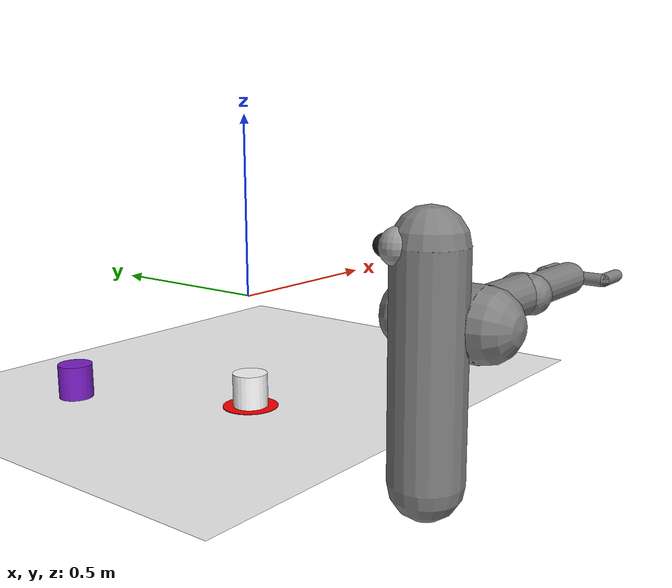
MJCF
<mujoco model="arm3d">
    <compiler angle="radian" coordinate="local" inertiafromgeom="true" />
    <option gravity="0 0 0" integrator="Euler" iterations="20" timestep="0.01" />

    <default>
        <joint armature="0.04" damping="1" limited="true" />
        <geom conaffinity="0" condim="1" contype="0" density="300" friction=".8 .1 .1" margin="0.002" />
    </default>

    <worldbody>
        <light diffuse=".5 .5 .5" dir="0 0 -1" pos="0 0 3" />

        <geom conaffinity="1" contype="1" pos="0 0.5 -0.325" size="1 1 0.1" type="plane" />

        <body name="r_shoulder_pan_link" pos="0 -0.6 0">
            <geom name="e1" pos="-0.06 0.05 0.2" rgba="0.6 0.6 0.6 1" size="0.05" type="sphere" />
            <geom name="e2" pos=" 0.06 0.05 0.2" rgba="0.6 0.6 0.6 1" size="0.05" type="sphere" />
            <geom name="e1p" pos="-0.06 0.09 0.2" rgba="0.1 0.1 0.1 1" size="0.03" type="sphere" />
            <geom name="e2p" pos=" 0.06 0.09 0.2" rgba="0.1 0.1 0.1 1" size="0.03" type="sphere" />
            <geom fromto="0 0 -0.4 0 0 0.2" name="sp" size="0.1" type="capsule" />
            <joint axis="0 0 1" damping="1.0" name="r_shoulder_pan_joint" pos="0 0 0" range="-2.2854 1.714602" type="hinge" />

            <body name="r_shoulder_lift_link" pos="0.1 0 0">
                <geom fromto="0 -0.1 0 0 0.1 0" name="sl" size="0.1" type="capsule" />
                <joint axis="0 1 0" damping="1.0" name="r_shoulder_lift_joint" pos="0 0 0" range="-0.5236 1.3963" type="hinge" />

                <body name="r_upper_arm_roll_link" pos="0 0 0">
                    <geom fromto="-0.1 0 0 0.1 0 0" name="uar" size="0.02" type="capsule" />
                    <joint axis="1 0 0" damping="0.1" name="r_upper_arm_roll_joint" pos="0 0 0" range="-1.5 1.7" type="hinge" />

                    <body name="r_upper_arm_link" pos="0 0 0">
                        <geom fromto="0 0 0 0.4 0 0" name="ua" size="0.06" type="capsule" />

                        <body name="r_elbow_flex_link" pos="0.4 0 0">
                            <geom fromto="0 -0.02 0 0.0 0.02 0" name="ef" size="0.06" type="capsule" />
                            <joint axis="0 1 0" damping="0.1" name="r_elbow_flex_joint" pos="0 0 0" range="-2.3213 0" type="hinge" />

                            <body name="r_forearm_roll_link" pos="0 0 0">
                                <geom fromto="-0.1 0 0 0.1 0 0" name="fr" size="0.02" type="capsule" />
                                <joint axis="1 0 0" damping=".1" limited="true" name="r_forearm_roll_joint" pos="0 0 0" range="-1.5 1.5" type="hinge" />

                                <body name="r_forearm_link" pos="0 0 0">
                                    <geom fromto="0 0 0 0.291 0 0" name="fa" size="0.05" type="capsule" />

                                    <body name="r_wrist_flex_link" pos="0.321 0 0">

                                        <geom fromto="0 -0.02 0 0 0.02 0" name="wf" size="0.01" type="capsule" />
                                        <joint axis="0 1 0" damping=".1" name="r_wrist_flex_joint" pos="0 0 0" range="-1.094 0" type="hinge" />

                                        <body name="r_wrist_roll_link" pos="0 0 0">

                                            <joint axis="1 0 0" damping="0.1" limited="true" name="r_wrist_roll_joint" pos="0 0 0" range="-1.5 1.5" type="hinge" />

                                            <body name="tips_arm" pos="0 0 0">
                                                <geom name="tip_arml" pos="0.1 -0.1 0." size="0.01" type="sphere" />
                                                <geom name="tip_armr" pos="0.1 0.1 0." size="0.01" type="sphere" />
                                            </body>
                                            <geom conaffinity="1" contype="1" fromto="0 -0.1 0. 0.0 +0.1 0" size="0.02" type="capsule" />
                                            <geom conaffinity="1" contype="1" fromto="0 -0.1 0. 0.1 -0.1 0" size="0.02" type="capsule" />
                                            <geom conaffinity="1" contype="1" fromto="0 +0.1 0. 0.1 +0.1 0." size="0.02" type="capsule" />

                                        </body>
                                    </body>
                                </body>
                            </body>
                        </body>
                    </body>
                </body>
            </body>
        </body>

        <body name="object" pos="0.0 0.0 -0.275">

            <geom conaffinity="1" contype="1" density="0.00001" rgba="1. 1. 1. 1" size="0.05 0.05 0.1" type="cylinder" />
            <joint axis="0 1 0" damping="0.5" name="obj_slidey" pos="0.01 0.01 0.01" range="-10.3213 10.3" type="slide" />
            <joint axis="1 0 0" damping="0.5" name="obj_slidex" pos="0.01 0.01 0.01" range="-10.3213 10.3" type="slide" />
        </body>

        <body name="goal" pos="0.0 0.0 -0.3230">
            <geom conaffinity="0" contype="0" density="0.00001" rgba="1. 0. 0. 1" size="0.08 0.001 0.1" type="cylinder" />
            <joint axis="0 1 0" damping="0.5" name="goal_slidey" pos="0 0 0" range="-10.3213 10.3" type="slide" />
            <joint axis="1 0 0" damping="0.5" name="goal_slidex" pos="0 0 0" range="-10.3213 10.3" type="slide" />
        </body>

    <geom conaffinity="0" contype="0" density="0.00001" name="object0" pos="-0.248609 0.473392 -0.275" rgba="0.484162 0.114487 0.786712 1" size="0.05 0.05 0.1" type="cylinder" /></worldbody>

    <actuator>
        <motor ctrllimited="true" ctrlrange="-2.0 2.0" joint="r_shoulder_pan_joint" />
        <motor ctrllimited="true" ctrlrange="-2.0 2.0" joint="r_shoulder_lift_joint" />
        <motor ctrllimited="true" ctrlrange="-2.0 2.0" joint="r_upper_arm_roll_joint" />
        <motor ctrllimited="true" ctrlrange="-2.0 2.0" joint="r_elbow_flex_joint" />
        <motor ctrllimited="true" ctrlrange="-2.0 2.0" joint="r_forearm_roll_joint" />
        <motor ctrllimited="true" ctrlrange="-2.0 2.0" joint="r_wrist_flex_joint" />
        <motor ctrllimited="true" ctrlrange="-2.0 2.0" joint="r_wrist_roll_joint" />
    </actuator>

</mujoco>
